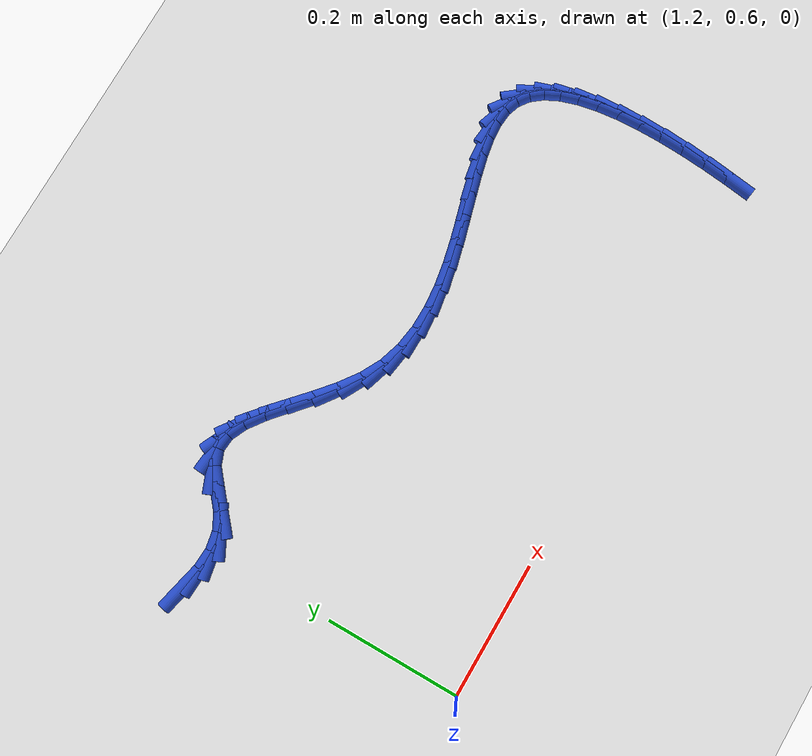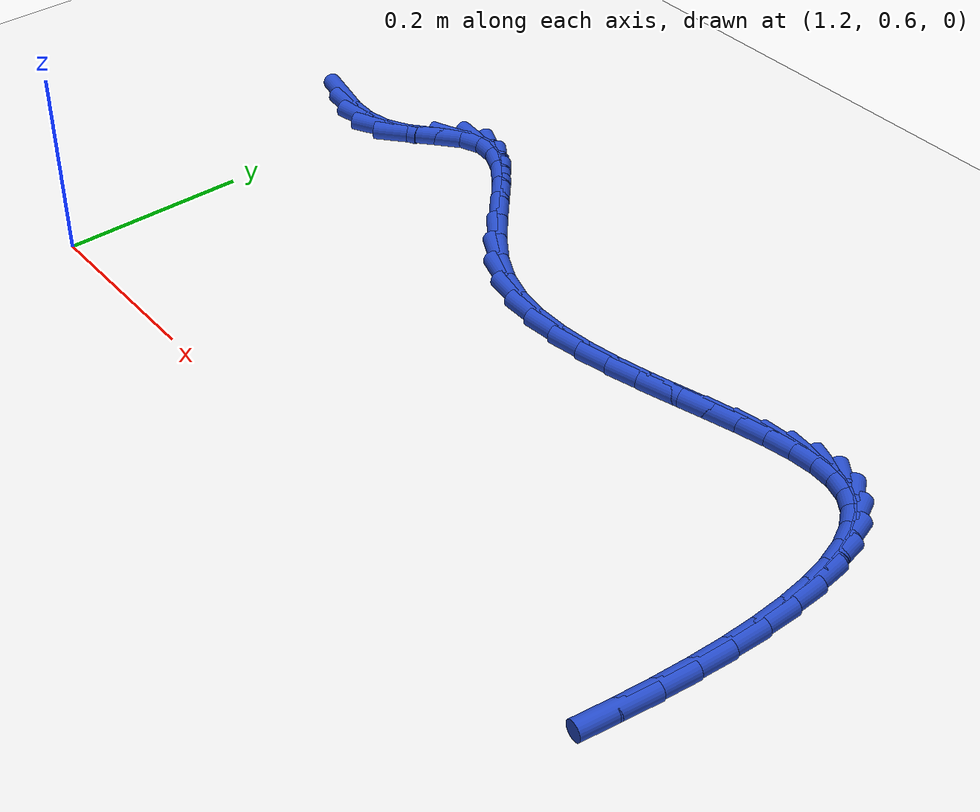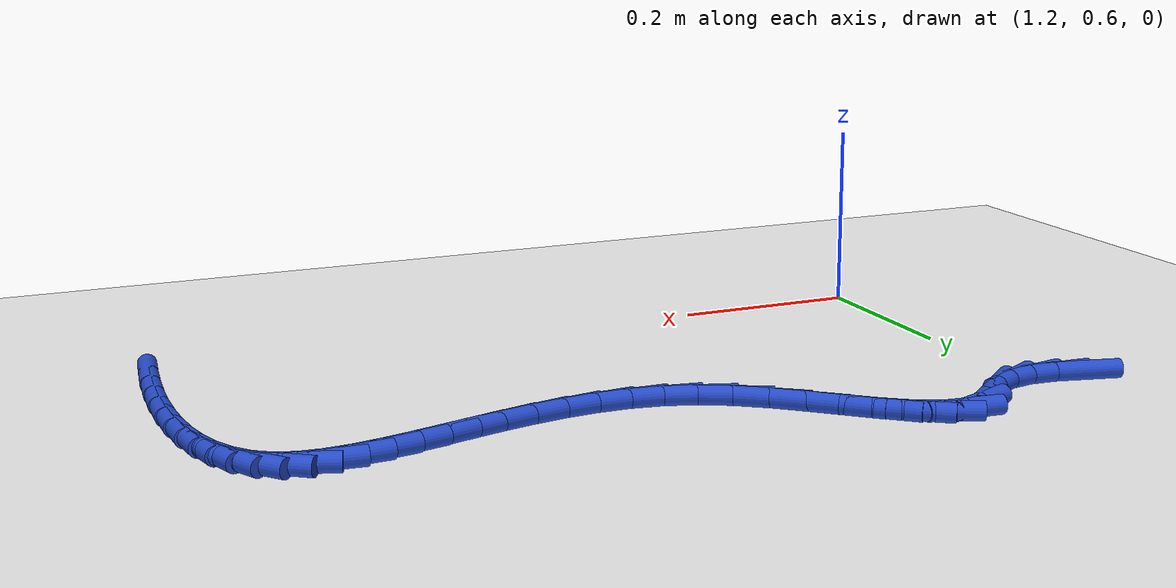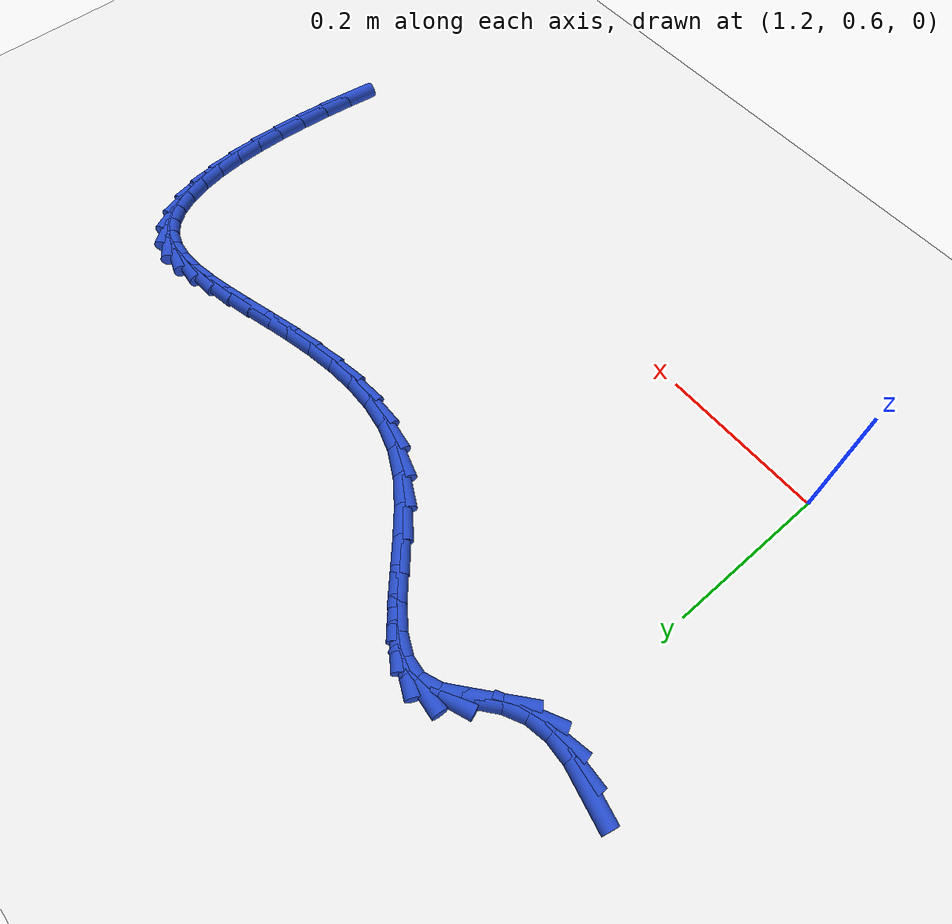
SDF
<sdf version="1.6">
 <world name="default">
  <model name="ground_plane">
   <static>1</static>
   <link name="link">
    <collision name="collision">
     <geometry><plane><normal>0 0 1</normal><size>100 100</size></plane></geometry>
     <surface><friction><ode><mu>100</mu><mu2>50</mu2></ode></friction></surface>
    </collision>
    <visual name="visual">
     <cast_shadows>0</cast_shadows>
     <geometry><plane><normal>0 0 1</normal><size>100 100</size></plane></geometry>
     <material>
      <script><uri>file://media/materials/scripts/gazebo.material</uri><name>Gazebo/WhiteGlow</name></script>
     </material>
    </visual>
   </link>
  </model>
  <model name="line">
   <link name="link_59">
    <pose>1.1422717826593072 0.9936676221882683 0.01 0 1.57 -0.22533162533398482</pose>
    <collision name="collision">
     <geometry><cylinder><radius>0.01</radius><length>0.08</length></cylinder></geometry>
    </collision>
    <visual name="visual">
     <material>
      <script><name>Gazebo/Blue</name><uri>file://media/materials/scripts/gazebo.material</uri></script>
     </material>
     <geometry><cylinder><radius>0.01</radius><length>0.08</length></cylinder></geometry>
    </visual>
   </link>
   <link name="link_60">
    <pose>1.1721702533812526 0.9868141633589208 0.01 0 1.57 -0.05307793624961049</pose>
    <collision name="collision">
     <geometry><cylinder><radius>0.01</radius><length>0.08</length></cylinder></geometry>
    </collision>
    <visual name="visual">
     <material>
      <script><name>Gazebo/Blue</name><uri>file://media/materials/scripts/gazebo.material</uri></script>
     </material>
     <geometry><cylinder><radius>0.01</radius><length>0.08</length></cylinder></geometry>
    </visual>
   </link>
   <link name="link_61">
    <pose>1.2009341324855805 0.9852860006669882 0.01 0 1.57 0.19031515986881176</pose>
    <collision name="collision">
     <geometry><cylinder><radius>0.01</radius><length>0.08</length></cylinder></geometry>
    </collision>
    <visual name="visual">
     <material>
      <script><name>Gazebo/Blue</name><uri>file://media/materials/scripts/gazebo.material</uri></script>
     </material>
     <geometry><cylinder><radius>0.01</radius><length>0.08</length></cylinder></geometry>
    </visual>
   </link>
   <link name="link_62">
    <pose>1.2283014878678251 0.990558230658592 0.01 0 1.57 0.48491114109836597</pose>
    <collision name="collision">
     <geometry><cylinder><radius>0.01</radius><length>0.08</length></cylinder></geometry>
    </collision>
    <visual name="visual">
     <material>
      <script><name>Gazebo/Blue</name><uri>file://media/materials/scripts/gazebo.material</uri></script>
     </material>
     <geometry><cylinder><radius>0.01</radius><length>0.08</length></cylinder></geometry>
    </visual>
   </link>
   <link name="link_63">
    <pose>1.25401064218709 1.0041035904554854 0.01 0 1.57 0.7115988885600627</pose>
    <collision name="collision">
     <geometry><cylinder><radius>0.01</radius><length>0.08</length></cylinder></geometry>
    </collision>
    <visual name="visual">
     <material>
      <script><name>Gazebo/Blue</name><uri>file://media/materials/scripts/gazebo.material</uri></script>
     </material>
     <geometry><cylinder><radius>0.01</radius><length>0.08</length></cylinder></geometry>
    </visual>
   </link>
   <link name="link_64">
    <pose>1.2780742719995617 1.0248539622278146 0.01 0 1.57 0.6986634431958092</pose>
    <collision name="collision">
     <geometry><cylinder><radius>0.01</radius><length>0.08</length></cylinder></geometry>
    </collision>
    <visual name="visual">
     <material>
      <script><name>Gazebo/Blue</name><uri>file://media/materials/scripts/gazebo.material</uri></script>
     </material>
     <geometry><cylinder><radius>0.01</radius><length>0.08</length></cylinder></geometry>
    </visual>
   </link>
   <link name="link_65">
    <pose>1.301301517719232 1.0443649919836653 0.01 0 1.57 0.3820760768623614</pose>
    <collision name="collision">
     <geometry><cylinder><radius>0.01</radius><length>0.08</length></cylinder></geometry>
    </collision>
    <visual name="visual">
     <material>
      <script><name>Gazebo/Blue</name><uri>file://media/materials/scripts/gazebo.material</uri></script>
     </material>
     <geometry><cylinder><radius>0.01</radius><length>0.08</length></cylinder></geometry>
    </visual>
   </link>
   <link name="link_66">
    <pose>1.324588043439721 1.0537220302565646 0.01 0 1.57 -0.0945205677847257</pose>
    <collision name="collision">
     <geometry><cylinder><radius>0.01</radius><length>0.08</length></cylinder></geometry>
    </collision>
    <visual name="visual">
     <material>
      <script><name>Gazebo/Blue</name><uri>file://media/materials/scripts/gazebo.material</uri></script>
     </material>
     <geometry><cylinder><radius>0.01</radius><length>0.08</length></cylinder></geometry>
    </visual>
   </link>
   <link name="link_67">
    <pose>1.3483337762712888 1.0514708620281081 0.01 0 1.57 -0.4407224927175288</pose>
    <collision name="collision">
     <geometry><cylinder><radius>0.01</radius><length>0.08</length></cylinder></geometry>
    </collision>
    <visual name="visual">
     <material>
      <script><name>Gazebo/Blue</name><uri>file://media/materials/scripts/gazebo.material</uri></script>
     </material>
     <geometry><cylinder><radius>0.01</radius><length>0.08</length></cylinder></geometry>
    </visual>
   </link>
   <link name="link_68">
    <pose>1.3726842533809163 1.039985631994366 0.01 0 1.57 -0.6303660260669522</pose>
    <collision name="collision">
     <geometry><cylinder><radius>0.01</radius><length>0.08</length></cylinder></geometry>
    </collision>
    <visual name="visual">
     <material>
      <script><name>Gazebo/Blue</name><uri>file://media/materials/scripts/gazebo.material</uri></script>
     </material>
     <geometry><cylinder><radius>0.01</radius><length>0.08</length></cylinder></geometry>
    </visual>
   </link>
   <link name="link_69">
    <pose>1.397782935124112 1.0216717391583878 0.01 0 1.57 -0.7187341791752794</pose>
    <collision name="collision">
     <geometry><cylinder><radius>0.01</radius><length>0.08</length></cylinder></geometry>
    </collision>
    <visual name="visual">
     <material>
      <script><name>Gazebo/Blue</name><uri>file://media/materials/scripts/gazebo.material</uri></script>
     </material>
     <geometry><cylinder><radius>0.01</radius><length>0.08</length></cylinder></geometry>
    </visual>
   </link>
   <link name="link_70">
    <pose>1.4237732818563849 0.9989345825232223 0.01 0 1.57 -0.7415786263005891</pose>
    <collision name="collision">
     <geometry><cylinder><radius>0.01</radius><length>0.08</length></cylinder></geometry>
    </collision>
    <visual name="visual">
     <material>
      <script><name>Gazebo/Blue</name><uri>file://media/materials/scripts/gazebo.material</uri></script>
     </material>
     <geometry><cylinder><radius>0.01</radius><length>0.08</length></cylinder></geometry>
    </visual>
   </link>
   <link name="link_71">
    <pose>1.4507987539332425 0.9741795610919196 0.01 0 1.57 -0.7125492239622521</pose>
    <collision name="collision">
     <geometry><cylinder><radius>0.01</radius><length>0.08</length></cylinder></geometry>
    </collision>
    <visual name="visual">
     <material>
      <script><name>Gazebo/Blue</name><uri>file://media/materials/scripts/gazebo.material</uri></script>
     </material>
     <geometry><cylinder><radius>0.01</radius><length>0.08</length></cylinder></geometry>
    </visual>
   </link>
   <link name="link_72">
    <pose>1.4790028117101937 0.9498120738675285 0.01 0 1.57 -0.6310305010271452</pose>
    <collision name="collision">
     <geometry><cylinder><radius>0.01</radius><length>0.08</length></cylinder></geometry>
    </collision>
    <visual name="visual">
     <material>
      <script><name>Gazebo/Blue</name><uri>file://media/materials/scripts/gazebo.material</uri></script>
     </material>
     <geometry><cylinder><radius>0.01</radius><length>0.08</length></cylinder></geometry>
    </visual>
   </link>
   <link name="link_73">
    <pose>1.5085289155427466 0.9282375198530987 0.01 0 1.57 -0.4873772878341161</pose>
    <collision name="collision">
     <geometry><cylinder><radius>0.01</radius><length>0.08</length></cylinder></geometry>
    </collision>
    <visual name="visual">
     <material>
      <script><name>Gazebo/Blue</name><uri>file://media/materials/scripts/gazebo.material</uri></script>
     </material>
     <geometry><cylinder><radius>0.01</radius><length>0.08</length></cylinder></geometry>
    </visual>
   </link>
   <link name="link_74">
    <pose>1.539513671873499 0.911814856487275 0.01 0 1.57 -0.30938280196421764</pose>
    <collision name="collision">
     <geometry><cylinder><radius>0.01</radius><length>0.08</length></cylinder></geometry>
    </collision>
    <visual name="visual">
     <material>
      <script><name>Gazebo/Blue</name><uri>file://media/materials/scripts/gazebo.material</uri></script>
     </material>
     <geometry><cylinder><radius>0.01</radius><length>0.08</length></cylinder></geometry>
    </visual>
   </link>
   <link name="link_75">
    <pose>1.5718819644609074 0.9014684252749491 0.01 0 1.57 -0.1490378007712887</pose>
    <collision name="collision">
     <geometry><cylinder><radius>0.01</radius><length>0.08</length></cylinder></geometry>
    </collision>
    <visual name="visual">
     <material>
      <script><name>Gazebo/Blue</name><uri>file://media/materials/scripts/gazebo.material</uri></script>
     </material>
     <geometry><cylinder><radius>0.01</radius><length>0.08</length></cylinder></geometry>
    </visual>
   </link>
   <link name="link_76">
    <pose>1.6053116768973987 0.896448914398174 0.01 0 1.57 -0.01570670925698995</pose>
    <collision name="collision">
     <geometry><cylinder><radius>0.01</radius><length>0.08</length></cylinder></geometry>
    </collision>
    <visual name="visual">
     <material>
      <script><name>Gazebo/Blue</name><uri>file://media/materials/scripts/gazebo.material</uri></script>
     </material>
     <geometry><cylinder><radius>0.01</radius><length>0.08</length></cylinder></geometry>
    </visual>
   </link>
   <link name="link_77">
    <pose>1.639466730794724 0.8959124067772882 0.01 0 1.57 0.08957410415533272</pose>
    <collision name="collision">
     <geometry><cylinder><radius>0.01</radius><length>0.08</length></cylinder></geometry>
    </collision>
    <visual name="visual">
     <material>
      <script><name>Gazebo/Blue</name><uri>file://media/materials/scripts/gazebo.material</uri></script>
     </material>
     <geometry><cylinder><radius>0.01</radius><length>0.08</length></cylinder></geometry>
    </visual>
   </link>
   <link name="link_78">
    <pose>1.6740110477646342 0.8990149853326305 0.01 0 1.57 0.16884443567637286</pose>
    <collision name="collision">
     <geometry><cylinder><radius>0.01</radius><length>0.08</length></cylinder></geometry>
    </collision>
    <visual name="visual">
     <material>
      <script><name>Gazebo/Blue</name><uri>file://media/materials/scripts/gazebo.material</uri></script>
     </material>
     <geometry><cylinder><radius>0.01</radius><length>0.08</length></cylinder></geometry>
    </visual>
   </link>
   <link name="link_79">
    <pose>1.7086085494188787 0.9049127329845392 0.01 0 1.57 0.22486793712068964</pose>
    <collision name="collision">
     <geometry><cylinder><radius>0.01</radius><length>0.08</length></cylinder></geometry>
    </collision>
    <visual name="visual">
     <material>
      <script><name>Gazebo/Blue</name><uri>file://media/materials/scripts/gazebo.material</uri></script>
     </material>
     <geometry><cylinder><radius>0.01</radius><length>0.08</length></cylinder></geometry>
    </visual>
   </link>
   <link name="link_80">
    <pose>1.7429231573692083 0.9127617326533528 0.01 0 1.57 0.2597940476123491</pose>
    <collision name="collision">
     <geometry><cylinder><radius>0.01</radius><length>0.08</length></cylinder></geometry>
    </collision>
    <visual name="visual">
     <material>
      <script><name>Gazebo/Blue</name><uri>file://media/materials/scripts/gazebo.material</uri></script>
     </material>
     <geometry><cylinder><radius>0.01</radius><length>0.08</length></cylinder></geometry>
    </visual>
   </link>
   <link name="link_81">
    <pose>1.7766187932273756 0.9217180672594103 0.01 0 1.57 0.27449186789352664</pose>
    <collision name="collision">
     <geometry><cylinder><radius>0.01</radius><length>0.08</length></cylinder></geometry>
    </collision>
    <visual name="visual">
     <material>
      <script><name>Gazebo/Blue</name><uri>file://media/materials/scripts/gazebo.material</uri></script>
     </material>
     <geometry><cylinder><radius>0.01</radius><length>0.08</length></cylinder></geometry>
    </visual>
   </link>
   <link name="link_82">
    <pose>1.809359378605129 0.9309378197230493 0.01 0 1.57 0.26808987006925306</pose>
    <collision name="collision">
     <geometry><cylinder><radius>0.01</radius><length>0.08</length></cylinder></geometry>
    </collision>
    <visual name="visual">
     <material>
      <script><name>Gazebo/Blue</name><uri>file://media/materials/scripts/gazebo.material</uri></script>
     </material>
     <geometry><cylinder><radius>0.01</radius><length>0.08</length></cylinder></geometry>
    </visual>
   </link>
   <link name="link_83">
    <pose>1.840808835114219 0.9395770729646082 0.01 0 1.57 0.23736717130398002</pose>
    <collision name="collision">
     <geometry><cylinder><radius>0.01</radius><length>0.08</length></cylinder></geometry>
    </collision>
    <visual name="visual">
     <material>
      <script><name>Gazebo/Blue</name><uri>file://media/materials/scripts/gazebo.material</uri></script>
     </material>
     <geometry><cylinder><radius>0.01</radius><length>0.08</length></cylinder></geometry>
    </visual>
   </link>
   <link name="link_84">
    <pose>1.8706310843663987 0.9467919099044267 0.01 0 1.57 0.17572384812159933</pose>
    <collision name="collision">
     <geometry><cylinder><radius>0.01</radius><length>0.08</length></cylinder></geometry>
    </collision>
    <visual name="visual">
     <material>
      <script><name>Gazebo/Blue</name><uri>file://media/materials/scripts/gazebo.material</uri></script>
     </material>
     <geometry><cylinder><radius>0.01</radius><length>0.08</length></cylinder></geometry>
    </visual>
   </link>
   <link name="link_85">
    <pose>1.898490047973417 0.9517384134628424 0.01 0 1.57 0.0716409489124832</pose>
    <collision name="collision">
     <geometry><cylinder><radius>0.01</radius><length>0.08</length></cylinder></geometry>
    </collision>
    <visual name="visual">
     <material>
      <script><name>Gazebo/Blue</name><uri>file://media/materials/scripts/gazebo.material</uri></script>
     </material>
     <geometry><cylinder><radius>0.01</radius><length>0.08</length></cylinder></geometry>
    </visual>
   </link>
   <link name="link_86">
    <pose>1.9240496475470243 0.9535726665601938 0.01 0 1.57 -0.09229937446221288</pose>
    <collision name="collision">
     <geometry><cylinder><radius>0.01</radius><length>0.08</length></cylinder></geometry>
    </collision>
    <visual name="visual">
     <material>
      <script><name>Gazebo/Blue</name><uri>file://media/materials/scripts/gazebo.material</uri></script>
     </material>
     <geometry><cylinder><radius>0.01</radius><length>0.08</length></cylinder></geometry>
    </visual>
   </link>
   <link name="link_87">
    <pose>1.9469738046989722 0.9514507521168196 0.01 0 1.57 -0.33392967617995345</pose>
    <collision name="collision">
     <geometry><cylinder><radius>0.01</radius><length>0.08</length></cylinder></geometry>
    </collision>
    <visual name="visual">
     <material>
      <script><name>Gazebo/Blue</name><uri>file://media/materials/scripts/gazebo.material</uri></script>
     </material>
     <geometry><cylinder><radius>0.01</radius><length>0.08</length></cylinder></geometry>
    </visual>
   </link>
   <link name="link_88">
    <pose>1.9669264410410099 0.944528753053058 0.01 0 1.57 -0.6359591827865287</pose>
    <collision name="collision">
     <geometry><cylinder><radius>0.01</radius><length>0.08</length></cylinder></geometry>
    </collision>
    <visual name="visual">
     <material>
      <script><name>Gazebo/Blue</name><uri>file://media/materials/scripts/gazebo.material</uri></script>
     </material>
     <geometry><cylinder><radius>0.01</radius><length>0.08</length></cylinder></geometry>
    </visual>
   </link>
   <link name="link_89">
    <pose>1.9836561385322653 0.9321775218461132 0.01 0 1.57 -0.9080077865884114</pose>
    <collision name="collision">
     <geometry><cylinder><radius>0.01</radius><length>0.08</length></cylinder></geometry>
    </collision>
    <visual name="visual">
     <material>
      <script><name>Gazebo/Blue</name><uri>file://media/materials/scripts/gazebo.material</uri></script>
     </material>
     <geometry><cylinder><radius>0.01</radius><length>0.08</length></cylinder></geometry>
    </visual>
   </link>
   <link name="link_90">
    <pose>1.9972855750331053 0.9147169315409786 0.01 0 1.57 -1.1158771694194514</pose>
    <collision name="collision">
     <geometry><cylinder><radius>0.01</radius><length>0.08</length></cylinder></geometry>
    </collision>
    <visual name="visual">
     <material>
      <script><name>Gazebo/Blue</name><uri>file://media/materials/scripts/gazebo.material</uri></script>
     </material>
     <geometry><cylinder><radius>0.01</radius><length>0.08</length></cylinder></geometry>
    </visual>
   </link>
   <link name="link_91">
    <pose>2.008040724752363 0.8927289012487554 0.01 0 1.57 -1.2678198245546224</pose>
    <collision name="collision">
     <geometry><cylinder><radius>0.01</radius><length>0.08</length></cylinder></geometry>
    </collision>
    <visual name="visual">
     <material>
      <script><name>Gazebo/Blue</name><uri>file://media/materials/scripts/gazebo.material</uri></script>
     </material>
     <geometry><cylinder><radius>0.01</radius><length>0.08</length></cylinder></geometry>
    </visual>
   </link>
   <link name="link_92">
    <pose>2.0161475653172873 0.8667953587525244 0.01 0 1.57 -1.3791480973832186</pose>
    <collision name="collision">
     <geometry><cylinder><radius>0.01</radius><length>0.08</length></cylinder></geometry>
    </collision>
    <visual name="visual">
     <material>
      <script><name>Gazebo/Blue</name><uri>file://media/materials/scripts/gazebo.material</uri></script>
     </material>
     <geometry><cylinder><radius>0.01</radius><length>0.08</length></cylinder></geometry>
    </visual>
   </link>
   <link name="link_93">
    <pose>2.0218320743551335 0.8374982318353672 0.01 0 1.57 -1.4624847339812372</pose>
    <collision name="collision">
     <geometry><cylinder><radius>0.01</radius><length>0.08</length></cylinder></geometry>
    </collision>
    <visual name="visual">
     <material>
      <script><name>Gazebo/Blue</name><uri>file://media/materials/scripts/gazebo.material</uri></script>
     </material>
     <geometry><cylinder><radius>0.01</radius><length>0.08</length></cylinder></geometry>
    </visual>
   </link>
   <link name="link_94">
    <pose>2.0253202294931527 0.8054194482803664 0.01 0 1.57 -1.526547377781316</pose>
    <collision name="collision">
     <geometry><cylinder><radius>0.01</radius><length>0.08</length></cylinder></geometry>
    </collision>
    <visual name="visual">
     <material>
      <script><name>Gazebo/Blue</name><uri>file://media/materials/scripts/gazebo.material</uri></script>
     </material>
     <geometry><cylinder><radius>0.01</radius><length>0.08</length></cylinder></geometry>
    </visual>
   </link>
   <link name="link_95">
    <pose>2.026838008358597 0.7711409358706023 0.01 0 1.57 1.56448323368767</pose>
    <collision name="collision">
     <geometry><cylinder><radius>0.01</radius><length>0.08</length></cylinder></geometry>
    </collision>
    <visual name="visual">
     <material>
      <script><name>Gazebo/Blue</name><uri>file://media/materials/scripts/gazebo.material</uri></script>
     </material>
     <geometry><cylinder><radius>0.01</radius><length>0.08</length></cylinder></geometry>
    </visual>
   </link>
   <link name="link_96">
    <pose>2.02661138857872 0.7352446223891569 0.01 0 1.57 1.5235815784366826</pose>
    <collision name="collision">
     <geometry><cylinder><radius>0.01</radius><length>0.08</length></cylinder></geometry>
    </collision>
    <visual name="visual">
     <material>
      <script><name>Gazebo/Blue</name><uri>file://media/materials/scripts/gazebo.material</uri></script>
     </material>
     <geometry><cylinder><radius>0.01</radius><length>0.08</length></cylinder></geometry>
    </visual>
   </link>
   <link name="link_97">
    <pose>2.024866347780771 0.698312435619112 0.01 0 1.57 1.489728109381425</pose>
    <collision name="collision">
     <geometry><cylinder><radius>0.01</radius><length>0.08</length></cylinder></geometry>
    </collision>
    <visual name="visual">
     <material>
      <script><name>Gazebo/Blue</name><uri>file://media/materials/scripts/gazebo.material</uri></script>
     </material>
     <geometry><cylinder><radius>0.01</radius><length>0.08</length></cylinder></geometry>
    </visual>
   </link>
   <link name="link_98">
    <pose>2.021828863592006 0.6609263033435493 0.01 0 1.57 1.461089531028589</pose>
    <collision name="collision">
     <geometry><cylinder><radius>0.01</radius><length>0.08</length></cylinder></geometry>
    </collision>
    <visual name="visual">
     <material>
      <script><name>Gazebo/Blue</name><uri>file://media/materials/scripts/gazebo.material</uri></script>
     </material>
     <geometry><cylinder><radius>0.01</radius><length>0.08</length></cylinder></geometry>
    </visual>
   </link>
   <link name="link_99">
    <pose>2.0177249136396753 0.6236681533455499 0.01 0 1.57 1.4363274567013842</pose>
    <collision name="collision">
     <geometry><cylinder><radius>0.01</radius><length>0.08</length></cylinder></geometry>
    </collision>
    <visual name="visual">
     <material>
      <script><name>Gazebo/Blue</name><uri>file://media/materials/scripts/gazebo.material</uri></script>
     </material>
     <geometry><cylinder><radius>0.01</radius><length>0.08</length></cylinder></geometry>
    </visual>
   </link>
  </model>
 </world>
</sdf>
